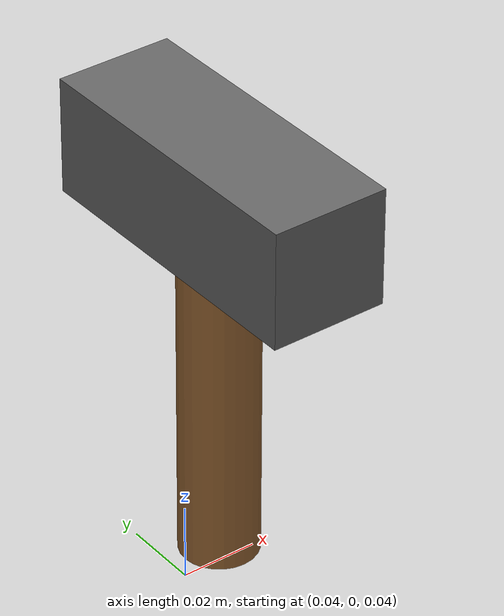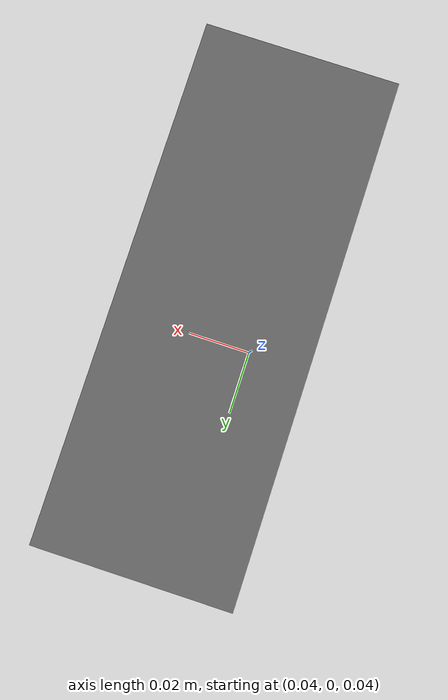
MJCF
<mujoco>
  <!-- Hammer (composite: box head + cylinder handle) -->
  <worldbody>
    <body name="object" pos="0.05 0 0.095">
      <freejoint name="object_joint"/>
      <inertial pos="0 0 0" mass="0.4" diaginertia="8e-4 8e-4 1e-4"/>
      <!-- Head (box) -->
      <geom name="object_geom" type="box" size="0.015 0.04 0.015"
            pos="0 0 0.05"
            rgba="0.4 0.4 0.4 1" contype="1" conaffinity="1"
            friction="1 0.5 0.01"/>
      <!-- Handle (cylinder) -->
      <geom name="handle" type="cylinder" size="0.01 0.05"
            rgba="0.6 0.4 0.2 1" contype="1" conaffinity="1"
            friction="1 0.5 0.01"/>
    </body>
  </worldbody>
</mujoco>
